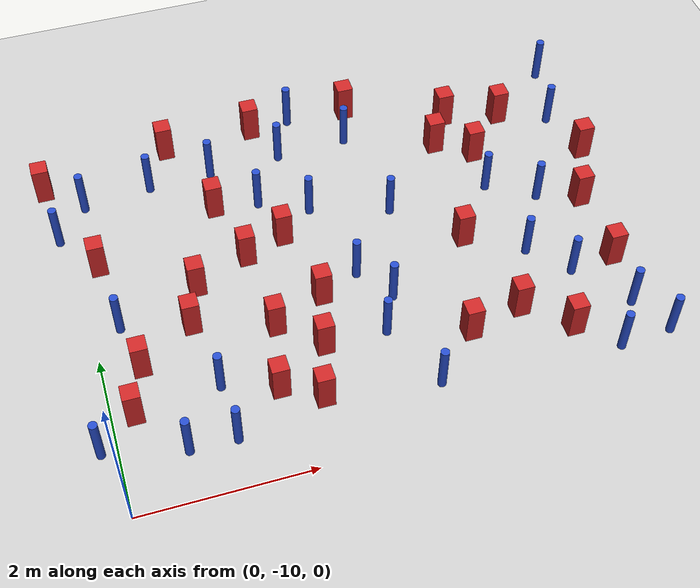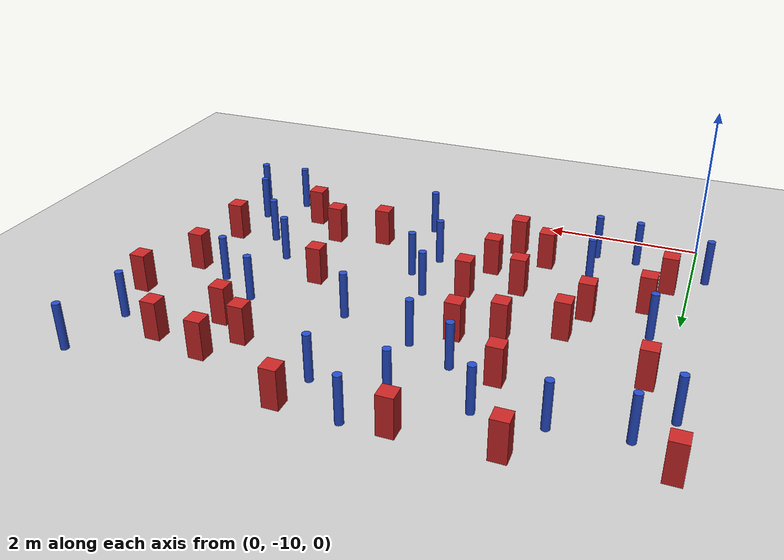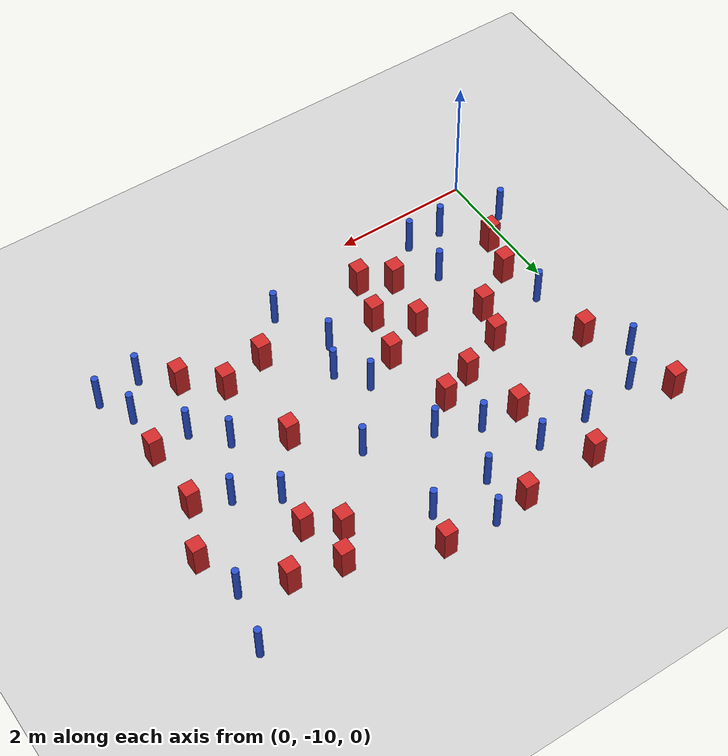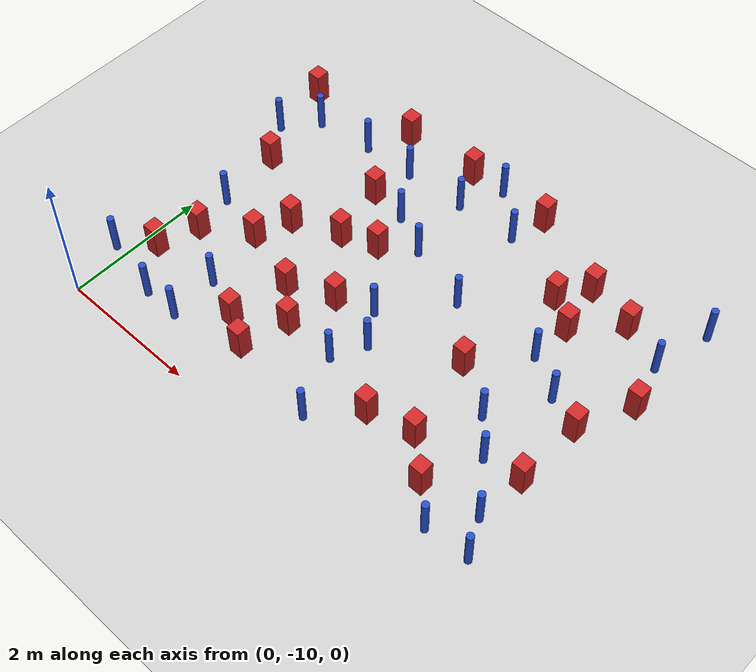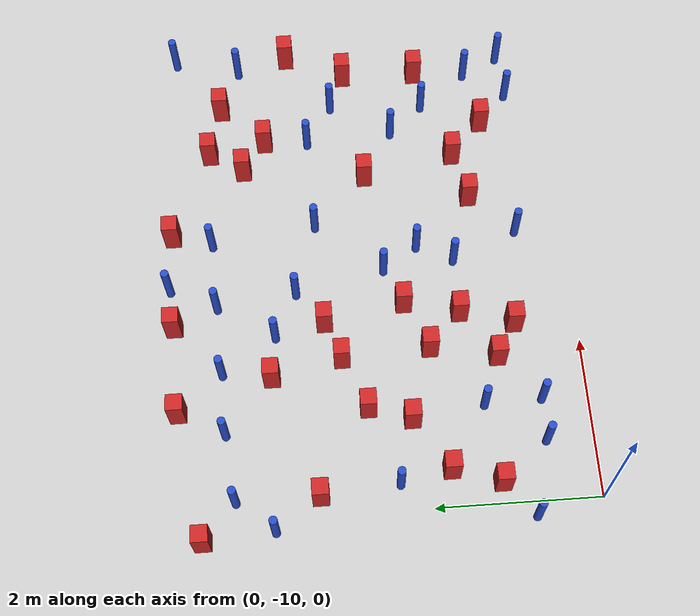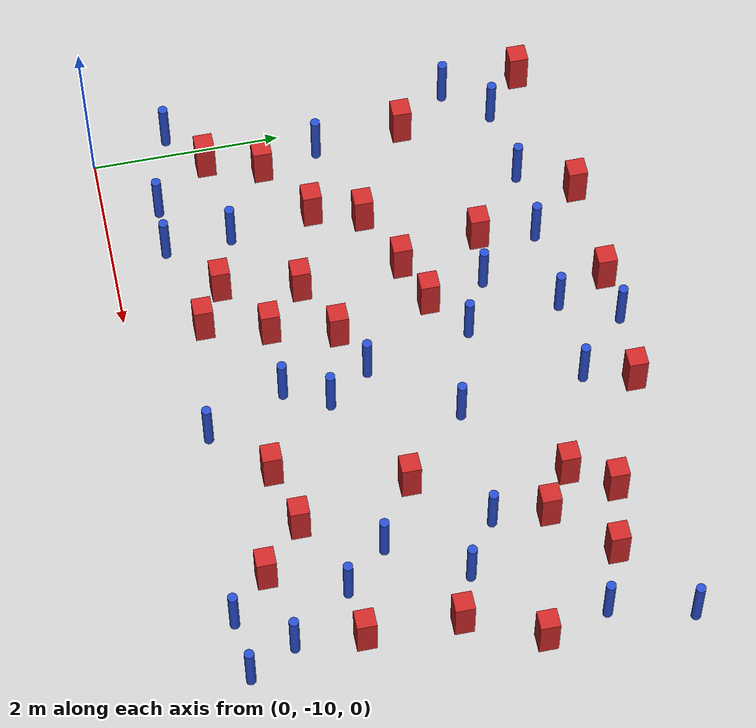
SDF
<sdf version="1.6">
 <world name="default">
  <model name="ground_plane">
   <static>1</static>
   <link name="link">
    <collision name="collision">
     <geometry><plane><normal>0 0 1</normal><size>100 100</size></plane></geometry>
     <surface><friction><ode><mu>100</mu><mu2>50</mu2></ode></friction></surface>
    </collision>
    <visual name="visual">
     <cast_shadows>0</cast_shadows>
     <geometry><plane><normal>0 0 1</normal><size>100 100</size></plane></geometry>
     <material>
      <ambient>1.0 1.0 1.0 1.0</ambient>
      <diffuse>0.8 0.8 0.8 1.0</diffuse>
      <specular>0.01 0.01 0.01 1.000000</specular>
     </material>
    </visual>
   </link>
  </model>
  <model name="square_post_obstacle4">
   <static>true</static>
   <pose>1.84041106598 -8.94122903766 8.22691968438e-08 7.2212513382e-06 -7.54495500217e-07 2.29674213826e-05</pose>
   <link name="link">
    <pose>0 0 0.25 0 -0 0</pose>
    <inertial>
     <mass>100</mass>
     <inertia>
      <ixx>0.166667</ixx>
      <ixy>0</ixy>
      <ixz>0</ixz>
      <iyy>0.166667</iyy>
      <iyz>0</iyz>
      <izz>0.166667</izz>
     </inertia>
    </inertial>
    <collision name="collision"><geometry><box><size>.2 .2 .5</size></box></geometry></collision>
    <visual name="visual">
     <geometry><box><size>.2 .2 .5</size></box></geometry>
     <material>
      <script><name>Gazebo/Red</name><uri>file://media/materials/scripts/gazebo.material</uri></script>
     </material>
    </visual>
   </link>
  </model>
  <model name="square_post_obstacle5">
   <static>true</static>
   <pose>4.70011311741 -5.88994895485 8.22691968438e-08 7.2212513382e-06 -7.54495500217e-07 2.29674213826e-05</pose>
   <link name="link">
    <pose>0 0 0.25 0 -0 0</pose>
    <inertial>
     <mass>100</mass>
     <inertia>
      <ixx>0.166667</ixx>
      <ixy>0</ixy>
      <ixz>0</ixz>
      <iyy>0.166667</iyy>
      <iyz>0</iyz>
      <izz>0.166667</izz>
     </inertia>
    </inertial>
    <collision name="collision"><geometry><box><size>.2 .2 .5</size></box></geometry></collision>
    <visual name="visual">
     <geometry><box><size>.2 .2 .5</size></box></geometry>
     <material>
      <script><name>Gazebo/Red</name><uri>file://media/materials/scripts/gazebo.material</uri></script>
     </material>
    </visual>
   </link>
  </model>
  <model name="pole_obstacle9">
   <static>true</static>
   <pose>2.28499519271 -6.22191880384 2.88873142074e-08 -9.90536689859e-09 4.60219948989e-07 -1.20965994961e-07</pose>
   <link name="link">
    <pose>0 0 0.3 0 -0 0</pose>
    <inertial>
     <mass>1</mass>
     <inertia><ixx>0.145833</ixx><ixy>0</ixy><ixz>0</ixz><iyy>0.145833</iyy><iyz>0</iyz><izz>0.125</izz></inertia>
    </inertial>
    <collision name="collision">
     <geometry><cylinder><radius>0.05</radius><length>.6</length></cylinder></geometry>
    </collision>
    <visual name="visual">
     <geometry><cylinder><radius>0.05</radius><length>.6</length></cylinder></geometry>
     <material>
      <script><name>Gazebo/Blue</name><uri>file://media/materials/scripts/gazebo.material</uri></script>
     </material>
    </visual>
   </link>
  </model>
  <model name="pole_obstacle10">
   <static>true</static>
   <pose>5.08234598472 -6.75202170743 2.88873142074e-08 -9.90536690842e-09 4.60219948965e-07 -1.20965994976e-07</pose>
   <link name="link">
    <pose>0 0 0.3 0 -0 0</pose>
    <inertial>
     <mass>1</mass>
     <inertia><ixx>0.145833</ixx><ixy>0</ixy><ixz>0</ixz><iyy>0.145833</iyy><iyz>0</iyz><izz>0.125</izz></inertia>
    </inertial>
    <collision name="collision">
     <geometry><cylinder><radius>0.05</radius><length>.6</length></cylinder></geometry>
    </collision>
    <visual name="visual">
     <geometry><cylinder><radius>0.05</radius><length>.6</length></cylinder></geometry>
     <material>
      <script><name>Gazebo/Blue</name><uri>file://media/materials/scripts/gazebo.material</uri></script>
     </material>
    </visual>
   </link>
  </model>
  <model name="pole_obstacle23">
   <static>true</static>
   <pose>3.81022921327 -6.79048008146 2.88873142074e-08 -9.90536689859e-09 4.60219948989e-07 -1.20965994961e-07</pose>
   <link name="link">
    <pose>0 0 0.3 0 -0 0</pose>
    <inertial>
     <mass>1</mass>
     <inertia><ixx>0.145833</ixx><ixy>0</ixy><ixz>0</ixz><iyy>0.145833</iyy><iyz>0</iyz><izz>0.125</izz></inertia>
    </inertial>
    <collision name="collision">
     <geometry><cylinder><radius>0.05</radius><length>.6</length></cylinder></geometry>
    </collision>
    <visual name="visual">
     <geometry><cylinder><radius>0.05</radius><length>.6</length></cylinder></geometry>
     <material>
      <script><name>Gazebo/Blue</name><uri>file://media/materials/scripts/gazebo.material</uri></script>
     </material>
    </visual>
   </link>
  </model>
  <model name="pole_obstacle35">
   <static>true</static>
   <pose>1.83019358297 -5.55293788739 2.88873142074e-08 -9.90536689852e-09 4.60219948989e-07 -1.2096599496e-07</pose>
   <link name="link">
    <pose>0 0 0.3 0 -0 0</pose>
    <inertial>
     <mass>1</mass>
     <inertia><ixx>0.145833</ixx><ixy>0</ixy><ixz>0</ixz><iyy>0.145833</iyy><iyz>0</iyz><izz>0.125</izz></inertia>
    </inertial>
    <collision name="collision">
     <geometry><cylinder><radius>0.05</radius><length>.6</length></cylinder></geometry>
    </collision>
    <visual name="visual">
     <geometry><cylinder><radius>0.05</radius><length>.6</length></cylinder></geometry>
     <material>
      <script><name>Gazebo/Blue</name><uri>file://media/materials/scripts/gazebo.material</uri></script>
     </material>
    </visual>
   </link>
  </model>
  <model name="square_post_obstacle30">
   <static>true</static>
   <pose>4.76592177865 -8.65943498125 8.22691968438e-08 7.2212513382e-06 -7.54495500217e-07 2.29674213826e-05</pose>
   <link name="link">
    <pose>0 0 0.25 0 -0 0</pose>
    <inertial>
     <mass>100</mass>
     <inertia>
      <ixx>0.166667</ixx>
      <ixy>0</ixy>
      <ixz>0</ixz>
      <iyy>0.166667</iyy>
      <iyz>0</iyz>
      <izz>0.166667</izz>
     </inertia>
    </inertial>
    <collision name="collision"><geometry><box><size>.2 .2 .5</size></box></geometry></collision>
    <visual name="visual">
     <geometry><box><size>.2 .2 .5</size></box></geometry>
     <material>
      <script><name>Gazebo/Red</name><uri>file://media/materials/scripts/gazebo.material</uri></script>
     </material>
    </visual>
   </link>
  </model>
  <model name="square_post_obstacle33">
   <static>true</static>
   <pose>2.63471819083 -7.84402448298 8.22691968438e-08 7.2212513382e-06 -7.54495500217e-07 2.29674213826e-05</pose>
   <link name="link">
    <pose>0 0 0.25 0 -0 0</pose>
    <inertial>
     <mass>100</mass>
     <inertia>
      <ixx>0.166667</ixx>
      <ixy>0</ixy>
      <ixz>0</ixz>
      <iyy>0.166667</iyy>
      <iyz>0</iyz>
      <izz>0.166667</izz>
     </inertia>
    </inertial>
    <collision name="collision"><geometry><box><size>.2 .2 .5</size></box></geometry></collision>
    <visual name="visual">
     <geometry><box><size>.2 .2 .5</size></box></geometry>
     <material>
      <script><name>Gazebo/Red</name><uri>file://media/materials/scripts/gazebo.material</uri></script>
     </material>
    </visual>
   </link>
  </model>
  <model name="pole_obstacle48">
   <static>true</static>
   <pose>2.72795726994 -5.50694056634 2.88873142074e-08 -9.90536689859e-09 4.60219948989e-07 -1.20965994961e-07</pose>
   <link name="link">
    <pose>0 0 0.3 0 -0 0</pose>
    <inertial>
     <mass>1</mass>
     <inertia><ixx>0.145833</ixx><ixy>0</ixy><ixz>0</ixz><iyy>0.145833</iyy><iyz>0</iyz><izz>0.125</izz></inertia>
    </inertial>
    <collision name="collision">
     <geometry><cylinder><radius>0.05</radius><length>.6</length></cylinder></geometry>
    </collision>
    <visual name="visual">
     <geometry><cylinder><radius>0.05</radius><length>.6</length></cylinder></geometry>
     <material>
      <script><name>Gazebo/Blue</name><uri>file://media/materials/scripts/gazebo.material</uri></script>
     </material>
    </visual>
   </link>
  </model>
  <model name="pole_obstacle52">
   <static>true</static>
   <pose>-0.159036289525 -6.13808711103 2.88873142074e-08 -9.90536689816e-09 4.6021994899e-07 -1.20965994961e-07</pose>
   <link name="link">
    <pose>0 0 0.3 0 -0 0</pose>
    <inertial>
     <mass>1</mass>
     <inertia><ixx>0.145833</ixx><ixy>0</ixy><ixz>0</ixz><iyy>0.145833</iyy><iyz>0</iyz><izz>0.125</izz></inertia>
    </inertial>
    <collision name="collision">
     <geometry><cylinder><radius>0.05</radius><length>.6</length></cylinder></geometry>
    </collision>
    <visual name="visual">
     <geometry><cylinder><radius>0.05</radius><length>.6</length></cylinder></geometry>
     <material>
      <script><name>Gazebo/Blue</name><uri>file://media/materials/scripts/gazebo.material</uri></script>
     </material>
    </visual>
   </link>
  </model>
  <model name="square_post_obstacle42">
   <static>true</static>
   <pose>2.46304388663 -8.53074294228 8.22691968438e-08 7.22125133819e-06 -7.54495500217e-07 2.29674213826e-05</pose>
   <link name="link">
    <pose>0 0 0.25 0 -0 0</pose>
    <inertial>
     <mass>100</mass>
     <inertia>
      <ixx>0.166667</ixx>
      <ixy>0</ixy>
      <ixz>0</ixz>
      <iyy>0.166667</iyy>
      <iyz>0</iyz>
      <izz>0.166667</izz>
     </inertia>
    </inertial>
    <collision name="collision"><geometry><box><size>.2 .2 .5</size></box></geometry></collision>
    <visual name="visual">
     <geometry><box><size>.2 .2 .5</size></box></geometry>
     <material>
      <script><name>Gazebo/Red</name><uri>file://media/materials/scripts/gazebo.material</uri></script>
     </material>
    </visual>
   </link>
  </model>
  <model name="pole_obstacle58">
   <static>true</static>
   <pose>6.05254121358 -8.94738554839 2.88873142074e-08 -9.9053668967e-09 4.60219948993e-07 -1.20965994957e-07</pose>
   <link name="link">
    <pose>0 0 0.3 0 -0 0</pose>
    <inertial>
     <mass>1</mass>
     <inertia><ixx>0.145833</ixx><ixy>0</ixy><ixz>0</ixz><iyy>0.145833</iyy><iyz>0</iyz><izz>0.125</izz></inertia>
    </inertial>
    <collision name="collision">
     <geometry><cylinder><radius>0.05</radius><length>.6</length></cylinder></geometry>
    </collision>
    <visual name="visual">
     <geometry><cylinder><radius>0.05</radius><length>.6</length></cylinder></geometry>
     <material>
      <script><name>Gazebo/Blue</name><uri>file://media/materials/scripts/gazebo.material</uri></script>
     </material>
    </visual>
   </link>
  </model>
  <model name="pole_obstacle64">
   <static>true</static>
   <pose>0.218682896509 -5.67972015425 2.88873142074e-08 -9.90536689491e-09 4.60219948997e-07 -1.20965994955e-07</pose>
   <link name="link">
    <pose>0 0 0.3 0 -0 0</pose>
    <inertial>
     <mass>1</mass>
     <inertia><ixx>0.145833</ixx><ixy>0</ixy><ixz>0</ixz><iyy>0.145833</iyy><iyz>0</iyz><izz>0.125</izz></inertia>
    </inertial>
    <collision name="collision">
     <geometry><cylinder><radius>0.05</radius><length>.6</length></cylinder></geometry>
    </collision>
    <visual name="visual">
     <geometry><cylinder><radius>0.05</radius><length>.6</length></cylinder></geometry>
     <material>
      <script><name>Gazebo/Blue</name><uri>file://media/materials/scripts/gazebo.material</uri></script>
     </material>
    </visual>
   </link>
  </model>
  <model name="pole_obstacle69">
   <static>true</static>
   <pose>6.29346309663 -5.85694596729 2.88873142074e-08 -9.90536690842e-09 4.60219948965e-07 -1.20965994976e-07</pose>
   <link name="link">
    <pose>0 0 0.3 0 -0 0</pose>
    <inertial>
     <mass>1</mass>
     <inertia><ixx>0.145833</ixx><ixy>0</ixy><ixz>0</ixz><iyy>0.145833</iyy><iyz>0</iyz><izz>0.125</izz></inertia>
    </inertial>
    <collision name="collision">
     <geometry><cylinder><radius>0.05</radius><length>.6</length></cylinder></geometry>
    </collision>
    <visual name="visual">
     <geometry><cylinder><radius>0.05</radius><length>.6</length></cylinder></geometry>
     <material>
      <script><name>Gazebo/Blue</name><uri>file://media/materials/scripts/gazebo.material</uri></script>
     </material>
    </visual>
   </link>
  </model>
  <model name="pole_obstacle70">
   <static>true</static>
   <pose>6.30194003677 -9.43050835284 2.88873142074e-08 -9.9053668967e-09 4.60219948993e-07 -1.20965994957e-07</pose>
   <link name="link">
    <pose>0 0 0.3 0 -0 0</pose>
    <inertial>
     <mass>1</mass>
     <inertia><ixx>0.145833</ixx><ixy>0</ixy><ixz>0</ixz><iyy>0.145833</iyy><iyz>0</iyz><izz>0.125</izz></inertia>
    </inertial>
    <collision name="collision">
     <geometry><cylinder><radius>0.05</radius><length>.6</length></cylinder></geometry>
    </collision>
    <visual name="visual">
     <geometry><cylinder><radius>0.05</radius><length>.6</length></cylinder></geometry>
     <material>
      <script><name>Gazebo/Blue</name><uri>file://media/materials/scripts/gazebo.material</uri></script>
     </material>
    </visual>
   </link>
  </model>
  <model name="square_post_obstacle64">
   <static>true</static>
   <pose>1.27280979858 -7.30804106862 8.22691968438e-08 7.2212513382e-06 -7.54495500217e-07 2.29674213826e-05</pose>
   <link name="link">
    <pose>0 0 0.25 0 -0 0</pose>
    <inertial>
     <mass>100</mass>
     <inertia>
      <ixx>0.166667</ixx>
      <ixy>0</ixy>
      <ixz>0</ixz>
      <iyy>0.166667</iyy>
      <iyz>0</iyz>
      <izz>0.166667</izz>
     </inertia>
    </inertial>
    <collision name="collision"><geometry><box><size>.2 .2 .5</size></box></geometry></collision>
    <visual name="visual">
     <geometry><box><size>.2 .2 .5</size></box></geometry>
     <material>
      <script><name>Gazebo/Red</name><uri>file://media/materials/scripts/gazebo.material</uri></script>
     </material>
    </visual>
   </link>
  </model>
  <model name="pole_obstacle79">
   <static>true</static>
   <pose>1.22673794174 -8.71818432931 2.88873142074e-08 -9.90536690474e-09 4.60219948974e-07 -1.2096599497e-07</pose>
   <link name="link">
    <pose>0 0 0.3 0 -0 0</pose>
    <inertial>
     <mass>1</mass>
     <inertia><ixx>0.145833</ixx><ixy>0</ixy><ixz>0</ixz><iyy>0.145833</iyy><iyz>0</iyz><izz>0.125</izz></inertia>
    </inertial>
    <collision name="collision">
     <geometry><cylinder><radius>0.05</radius><length>.6</length></cylinder></geometry>
    </collision>
    <visual name="visual">
     <geometry><cylinder><radius>0.05</radius><length>.6</length></cylinder></geometry>
     <material>
      <script><name>Gazebo/Blue</name><uri>file://media/materials/scripts/gazebo.material</uri></script>
     </material>
    </visual>
   </link>
  </model>
  <model name="square_post_obstacle77">
   <static>true</static>
   <pose>-0.220350787871 -5.29303689626 8.22691968438e-08 7.22125133819e-06 -7.54495500217e-07 2.29674213826e-05</pose>
   <link name="link">
    <pose>0 0 0.25 0 -0 0</pose>
    <inertial>
     <mass>100</mass>
     <inertia>
      <ixx>0.166667</ixx>
      <ixy>0</ixy>
      <ixz>0</ixz>
      <iyy>0.166667</iyy>
      <iyz>0</iyz>
      <izz>0.166667</izz>
     </inertia>
    </inertial>
    <collision name="collision"><geometry><box><size>.2 .2 .5</size></box></geometry></collision>
    <visual name="visual">
     <geometry><box><size>.2 .2 .5</size></box></geometry>
     <material>
      <script><name>Gazebo/Red</name><uri>file://media/materials/scripts/gazebo.material</uri></script>
     </material>
    </visual>
   </link>
  </model>
  <model name="square_post_obstacle83">
   <static>true</static>
   <pose>2.01007070176 -8.11932654621 8.22691968438e-08 7.22125133819e-06 -7.54495500217e-07 2.29674213826e-05</pose>
   <link name="link">
    <pose>0 0 0.25 0 -0 0</pose>
    <inertial>
     <mass>100</mass>
     <inertia>
      <ixx>0.166667</ixx>
      <ixy>0</ixy>
      <ixz>0</ixz>
      <iyy>0.166667</iyy>
      <iyz>0</iyz>
      <izz>0.166667</izz>
     </inertia>
    </inertial>
    <collision name="collision"><geometry><box><size>.2 .2 .5</size></box></geometry></collision>
    <visual name="visual">
     <geometry><box><size>.2 .2 .5</size></box></geometry>
     <material>
      <script><name>Gazebo/Red</name><uri>file://media/materials/scripts/gazebo.material</uri></script>
     </material>
    </visual>
   </link>
  </model>
  <model name="square_post_obstacle84">
   <static>true</static>
   <pose>2.49554782191 -4.96716931104 8.22691968438e-08 7.22125133819e-06 -7.54495500217e-07 2.29674213826e-05</pose>
   <link name="link">
    <pose>0 0 0.25 0 -0 0</pose>
    <inertial>
     <mass>100</mass>
     <inertia>
      <ixx>0.166667</ixx>
      <ixy>0</ixy>
      <ixz>0</ixz>
      <iyy>0.166667</iyy>
      <iyz>0</iyz>
      <izz>0.166667</izz>
     </inertia>
    </inertial>
    <collision name="collision"><geometry><box><size>.2 .2 .5</size></box></geometry></collision>
    <visual name="visual">
     <geometry><box><size>.2 .2 .5</size></box></geometry>
     <material>
      <script><name>Gazebo/Red</name><uri>file://media/materials/scripts/gazebo.material</uri></script>
     </material>
    </visual>
   </link>
  </model>
  <model name="pole_obstacle99">
   <static>true</static>
   <pose>3.56519978934 -9.36902619376 2.88873142074e-08 -9.90536692318e-09 4.6021994893e-07 -1.20965994988e-07</pose>
   <link name="link">
    <pose>0 0 0.3 0 -0 0</pose>
    <inertial>
     <mass>1</mass>
     <inertia><ixx>0.145833</ixx><ixy>0</ixy><ixz>0</ixz><iyy>0.145833</iyy><iyz>0</iyz><izz>0.125</izz></inertia>
    </inertial>
    <collision name="collision">
     <geometry><cylinder><radius>0.05</radius><length>.6</length></cylinder></geometry>
    </collision>
    <visual name="visual">
     <geometry><cylinder><radius>0.05</radius><length>.6</length></cylinder></geometry>
     <material>
      <script><name>Gazebo/Blue</name><uri>file://media/materials/scripts/gazebo.material</uri></script>
     </material>
    </visual>
   </link>
  </model>
  <model name="square_post_obstacle100">
   <static>true</static>
   <pose>6.47187357395 -6.51758600525 8.22691968438e-08 7.22125133819e-06 -7.54495500217e-07 2.29674213826e-05</pose>
   <link name="link">
    <pose>0 0 0.25 0 -0 0</pose>
    <inertial>
     <mass>100</mass>
     <inertia>
      <ixx>0.166667</ixx>
      <ixy>0</ixy>
      <ixz>0</ixz>
      <iyy>0.166667</iyy>
      <iyz>0</iyz>
      <izz>0.166667</izz>
     </inertia>
    </inertial>
    <collision name="collision"><geometry><box><size>.2 .2 .5</size></box></geometry></collision>
    <visual name="visual">
     <geometry><box><size>.2 .2 .5</size></box></geometry>
     <material>
      <script><name>Gazebo/Red</name><uri>file://media/materials/scripts/gazebo.material</uri></script>
     </material>
    </visual>
   </link>
  </model>
  <model name="square_post_obstacle103">
   <static>true</static>
   <pose>0.252870038256 -8.82488550057 8.22691968438e-08 7.22125133819e-06 -7.54495500217e-07 2.29674213826e-05</pose>
   <link name="link">
    <pose>0 0 0.25 0 -0 0</pose>
    <inertial>
     <mass>100</mass>
     <inertia>
      <ixx>0.166667</ixx>
      <ixy>0</ixy>
      <ixz>0</ixz>
      <iyy>0.166667</iyy>
      <iyz>0</iyz>
      <izz>0.166667</izz>
     </inertia>
    </inertial>
    <collision name="collision"><geometry><box><size>.2 .2 .5</size></box></geometry></collision>
    <visual name="visual">
     <geometry><box><size>.2 .2 .5</size></box></geometry>
     <material>
      <script><name>Gazebo/Red</name><uri>file://media/materials/scripts/gazebo.material</uri></script>
     </material>
    </visual>
   </link>
  </model>
  <model name="pole_obstacle113">
   <static>true</static>
   <pose>-0.179792335642 -9.18770063555 2.88873142074e-08 -9.90536690875e-09 4.60219948965e-07 -1.20965994978e-07</pose>
   <link name="link">
    <pose>0 0 0.3 0 -0 0</pose>
    <inertial>
     <mass>1</mass>
     <inertia><ixx>0.145833</ixx><ixy>0</ixy><ixz>0</ixz><iyy>0.145833</iyy><iyz>0</iyz><izz>0.125</izz></inertia>
    </inertial>
    <collision name="collision">
     <geometry><cylinder><radius>0.05</radius><length>.6</length></cylinder></geometry>
    </collision>
    <visual name="visual">
     <geometry><cylinder><radius>0.05</radius><length>.6</length></cylinder></geometry>
     <material>
      <script><name>Gazebo/Blue</name><uri>file://media/materials/scripts/gazebo.material</uri></script>
     </material>
    </visual>
   </link>
  </model>
  <model name="square_post_obstacle114">
   <static>true</static>
   <pose>6.1076257782 -8.25750673547 8.22691968438e-08 7.2212513382e-06 -7.54495500217e-07 2.29674213826e-05</pose>
   <link name="link">
    <pose>0 0 0.25 0 -0 0</pose>
    <inertial>
     <mass>100</mass>
     <inertia>
      <ixx>0.166667</ixx>
      <ixy>0</ixy>
      <ixz>0</ixz>
      <iyy>0.166667</iyy>
      <iyz>0</iyz>
      <izz>0.166667</izz>
     </inertia>
    </inertial>
    <collision name="collision"><geometry><box><size>.2 .2 .5</size></box></geometry></collision>
    <visual name="visual">
     <geometry><box><size>.2 .2 .5</size></box></geometry>
     <material>
      <script><name>Gazebo/Red</name><uri>file://media/materials/scripts/gazebo.material</uri></script>
     </material>
    </visual>
   </link>
  </model>
  <model name="pole_obstacle120">
   <static>true</static>
   <pose>3.20280637633 -8.53207375318 2.88873142074e-08 -9.90536692318e-09 4.6021994893e-07 -1.20965994988e-07</pose>
   <link name="link">
    <pose>0 0 0.3 0 -0 0</pose>
    <inertial>
     <mass>1</mass>
     <inertia><ixx>0.145833</ixx><ixy>0</ixy><ixz>0</ixz><iyy>0.145833</iyy><iyz>0</iyz><izz>0.125</izz></inertia>
    </inertial>
    <collision name="collision">
     <geometry><cylinder><radius>0.05</radius><length>.6</length></cylinder></geometry>
    </collision>
    <visual name="visual">
     <geometry><cylinder><radius>0.05</radius><length>.6</length></cylinder></geometry>
     <material>
      <script><name>Gazebo/Blue</name><uri>file://media/materials/scripts/gazebo.material</uri></script>
     </material>
    </visual>
   </link>
  </model>
  <model name="pole_obstacle126">
   <static>true</static>
   <pose>5.17277144164 -7.87434018745 2.88873142074e-08 -9.90536690842e-09 4.60219948965e-07 -1.20965994976e-07</pose>
   <link name="link">
    <pose>0 0 0.3 0 -0 0</pose>
    <inertial>
     <mass>1</mass>
     <inertia><ixx>0.145833</ixx><ixy>0</ixy><ixz>0</ixz><iyy>0.145833</iyy><iyz>0</iyz><izz>0.125</izz></inertia>
    </inertial>
    <collision name="collision">
     <geometry><cylinder><radius>0.05</radius><length>.6</length></cylinder></geometry>
    </collision>
    <visual name="visual">
     <geometry><cylinder><radius>0.05</radius><length>.6</length></cylinder></geometry>
     <material>
      <script><name>Gazebo/Blue</name><uri>file://media/materials/scripts/gazebo.material</uri></script>
     </material>
    </visual>
   </link>
  </model>
  <model name="pole_obstacle137">
   <static>true</static>
   <pose>1.0524686714 -5.57836600572 2.88873142074e-08 -9.90536689852e-09 4.60219948989e-07 -1.2096599496e-07</pose>
   <link name="link">
    <pose>0 0 0.3 0 -0 0</pose>
    <inertial>
     <mass>1</mass>
     <inertia><ixx>0.145833</ixx><ixy>0</ixy><ixz>0</ixz><iyy>0.145833</iyy><iyz>0</iyz><izz>0.125</izz></inertia>
    </inertial>
    <collision name="collision">
     <geometry><cylinder><radius>0.05</radius><length>.6</length></cylinder></geometry>
    </collision>
    <visual name="visual">
     <geometry><cylinder><radius>0.05</radius><length>.6</length></cylinder></geometry>
     <material>
      <script><name>Gazebo/Blue</name><uri>file://media/materials/scripts/gazebo.material</uri></script>
     </material>
    </visual>
   </link>
  </model>
  <model name="square_post_obstacle134">
   <static>true</static>
   <pose>2.27312937882 -9.19396429457 8.22691968438e-08 7.22125133819e-06 -7.54495500217e-07 2.29674213826e-05</pose>
   <link name="link">
    <pose>0 0 0.25 0 -0 0</pose>
    <inertial>
     <mass>100</mass>
     <inertia>
      <ixx>0.166667</ixx>
      <ixy>0</ixy>
      <ixz>0</ixz>
      <iyy>0.166667</iyy>
      <iyz>0</iyz>
      <izz>0.166667</izz>
     </inertia>
    </inertial>
    <collision name="collision"><geometry><box><size>.2 .2 .5</size></box></geometry></collision>
    <visual name="visual">
     <geometry><box><size>.2 .2 .5</size></box></geometry>
     <material>
      <script><name>Gazebo/Red</name><uri>file://media/materials/scripts/gazebo.material</uri></script>
     </material>
    </visual>
   </link>
  </model>
  <model name="square_post_obstacle135">
   <static>true</static>
   <pose>0.441538835366 -8.23963980147 8.22691968438e-08 7.22125133819e-06 -7.54495500217e-07 2.29674213826e-05</pose>
   <link name="link">
    <pose>0 0 0.25 0 -0 0</pose>
    <inertial>
     <mass>100</mass>
     <inertia>
      <ixx>0.166667</ixx>
      <ixy>0</ixy>
      <ixz>0</ixz>
      <iyy>0.166667</iyy>
      <iyz>0</iyz>
      <izz>0.166667</izz>
     </inertia>
    </inertial>
    <collision name="collision"><geometry><box><size>.2 .2 .5</size></box></geometry></collision>
    <visual name="visual">
     <geometry><box><size>.2 .2 .5</size></box></geometry>
     <material>
      <script><name>Gazebo/Red</name><uri>file://media/materials/scripts/gazebo.material</uri></script>
     </material>
    </visual>
   </link>
  </model>
  <model name="square_post_obstacle143">
   <static>true</static>
   <pose>5.25356596154 -9.08665563074 8.22691968438e-08 7.2212513382e-06 -7.54495500217e-07 2.29674213826e-05</pose>
   <link name="link">
    <pose>0 0 0.25 0 -0 0</pose>
    <inertial>
     <mass>100</mass>
     <inertia>
      <ixx>0.166667</ixx>
      <ixy>0</ixy>
      <ixz>0</ixz>
      <iyy>0.166667</iyy>
      <iyz>0</iyz>
      <izz>0.166667</izz>
     </inertia>
    </inertial>
    <collision name="collision"><geometry><box><size>.2 .2 .5</size></box></geometry></collision>
    <visual name="visual">
     <geometry><box><size>.2 .2 .5</size></box></geometry>
     <material>
      <script><name>Gazebo/Red</name><uri>file://media/materials/scripts/gazebo.material</uri></script>
     </material>
    </visual>
   </link>
  </model>
  <model name="square_post_obstacle144">
   <static>true</static>
   <pose>0.225654592045 -6.68012672359 8.22691968438e-08 7.2212513382e-06 -7.54495500217e-07 2.29674213826e-05</pose>
   <link name="link">
    <pose>0 0 0.25 0 -0 0</pose>
    <inertial>
     <mass>100</mass>
     <inertia>
      <ixx>0.166667</ixx>
      <ixy>0</ixy>
      <ixz>0</ixz>
      <iyy>0.166667</iyy>
      <iyz>0</iyz>
      <izz>0.166667</izz>
     </inertia>
    </inertial>
    <collision name="collision"><geometry><box><size>.2 .2 .5</size></box></geometry></collision>
    <visual name="visual">
     <geometry><box><size>.2 .2 .5</size></box></geometry>
     <material>
      <script><name>Gazebo/Red</name><uri>file://media/materials/scripts/gazebo.material</uri></script>
     </material>
    </visual>
   </link>
  </model>
  <model name="pole_obstacle158">
   <static>true</static>
   <pose>0.307828723711 -7.62541927075 2.88873142074e-08 -9.90536689683e-09 4.60219948993e-07 -1.20965994957e-07</pose>
   <link name="link">
    <pose>0 0 0.3 0 -0 0</pose>
    <inertial>
     <mass>1</mass>
     <inertia><ixx>0.145833</ixx><ixy>0</ixy><ixz>0</ixz><iyy>0.145833</iyy><iyz>0</iyz><izz>0.125</izz></inertia>
    </inertial>
    <collision name="collision">
     <geometry><cylinder><radius>0.05</radius><length>.6</length></cylinder></geometry>
    </collision>
    <visual name="visual">
     <geometry><cylinder><radius>0.05</radius><length>.6</length></cylinder></geometry>
     <material>
      <script><name>Gazebo/Blue</name><uri>file://media/materials/scripts/gazebo.material</uri></script>
     </material>
    </visual>
   </link>
  </model>
  <model name="square_post_obstacle153">
   <static>true</static>
   <pose>4.97921795942 -5.45337031479 8.22691968438e-08 7.2212513382e-06 -7.54495500217e-07 2.29674213826e-05</pose>
   <link name="link">
    <pose>0 0 0.25 0 -0 0</pose>
    <inertial>
     <mass>100</mass>
     <inertia>
      <ixx>0.166667</ixx>
      <ixy>0</ixy>
      <ixz>0</ixz>
      <iyy>0.166667</iyy>
      <iyz>0</iyz>
      <izz>0.166667</izz>
     </inertia>
    </inertial>
    <collision name="collision"><geometry><box><size>.2 .2 .5</size></box></geometry></collision>
    <visual name="visual">
     <geometry><box><size>.2 .2 .5</size></box></geometry>
     <material>
      <script><name>Gazebo/Red</name><uri>file://media/materials/scripts/gazebo.material</uri></script>
     </material>
    </visual>
   </link>
  </model>
  <model name="square_post_obstacle154">
   <static>true</static>
   <pose>3.76799930524 -4.95729832944 8.22691968438e-08 7.22125133819e-06 -7.54495500217e-07 2.29674213826e-05</pose>
   <link name="link">
    <pose>0 0 0.25 0 -0 0</pose>
    <inertial>
     <mass>100</mass>
     <inertia>
      <ixx>0.166667</ixx>
      <ixy>0</ixy>
      <ixz>0</ixz>
      <iyy>0.166667</iyy>
      <iyz>0</iyz>
      <izz>0.166667</izz>
     </inertia>
    </inertial>
    <collision name="collision"><geometry><box><size>.2 .2 .5</size></box></geometry></collision>
    <visual name="visual">
     <geometry><box><size>.2 .2 .5</size></box></geometry>
     <material>
      <script><name>Gazebo/Red</name><uri>file://media/materials/scripts/gazebo.material</uri></script>
     </material>
    </visual>
   </link>
  </model>
  <model name="pole_obstacle165">
   <static>true</static>
   <pose>3.00814005378 -4.91621063714 2.88873142074e-08 -9.90536689859e-09 4.60219948989e-07 -1.20965994961e-07</pose>
   <link name="link">
    <pose>0 0 0.3 0 -0 0</pose>
    <inertial>
     <mass>1</mass>
     <inertia><ixx>0.145833</ixx><ixy>0</ixy><ixz>0</ixz><iyy>0.145833</iyy><iyz>0</iyz><izz>0.125</izz></inertia>
    </inertial>
    <collision name="collision">
     <geometry><cylinder><radius>0.05</radius><length>.6</length></cylinder></geometry>
    </collision>
    <visual name="visual">
     <geometry><cylinder><radius>0.05</radius><length>.6</length></cylinder></geometry>
     <material>
      <script><name>Gazebo/Blue</name><uri>file://media/materials/scripts/gazebo.material</uri></script>
     </material>
    </visual>
   </link>
  </model>
  <model name="square_post_obstacle161">
   <static>true</static>
   <pose>1.09969408842 -7.82776210381 8.22691968438e-08 7.2212513382e-06 -7.54495500217e-07 2.29674213826e-05</pose>
   <link name="link">
    <pose>0 0 0.25 0 -0 0</pose>
    <inertial>
     <mass>100</mass>
     <inertia>
      <ixx>0.166667</ixx>
      <ixy>0</ixy>
      <ixz>0</ixz>
      <iyy>0.166667</iyy>
      <iyz>0</iyz>
      <izz>0.166667</izz>
     </inertia>
    </inertial>
    <collision name="collision"><geometry><box><size>.2 .2 .5</size></box></geometry></collision>
    <visual name="visual">
     <geometry><box><size>.2 .2 .5</size></box></geometry>
     <material>
      <script><name>Gazebo/Red</name><uri>file://media/materials/scripts/gazebo.material</uri></script>
     </material>
    </visual>
   </link>
  </model>
  <model name="square_post_obstacle166">
   <static>true</static>
   <pose>1.93823226156 -7.02832082435 8.22691968438e-08 7.2212513382e-06 -7.54495500217e-07 2.29674213826e-05</pose>
   <link name="link">
    <pose>0 0 0.25 0 -0 0</pose>
    <inertial>
     <mass>100</mass>
     <inertia>
      <ixx>0.166667</ixx>
      <ixy>0</ixy>
      <ixz>0</ixz>
      <iyy>0.166667</iyy>
      <iyz>0</iyz>
      <izz>0.166667</izz>
     </inertia>
    </inertial>
    <collision name="collision"><geometry><box><size>.2 .2 .5</size></box></geometry></collision>
    <visual name="visual">
     <geometry><box><size>.2 .2 .5</size></box></geometry>
     <material>
      <script><name>Gazebo/Red</name><uri>file://media/materials/scripts/gazebo.material</uri></script>
     </material>
    </visual>
   </link>
  </model>
  <model name="pole_obstacle174">
   <static>true</static>
   <pose>0.725640200379 -9.41104645102 2.88873142074e-08 -9.90536690779e-09 4.60219948967e-07 -1.20965994975e-07</pose>
   <link name="link">
    <pose>0 0 0.3 0 -0 0</pose>
    <inertial>
     <mass>1</mass>
     <inertia><ixx>0.145833</ixx><ixy>0</ixy><ixz>0</ixz><iyy>0.145833</iyy><iyz>0</iyz><izz>0.125</izz></inertia>
    </inertial>
    <collision name="collision">
     <geometry><cylinder><radius>0.05</radius><length>.6</length></cylinder></geometry>
    </collision>
    <visual name="visual">
     <geometry><cylinder><radius>0.05</radius><length>.6</length></cylinder></geometry>
     <material>
      <script><name>Gazebo/Blue</name><uri>file://media/materials/scripts/gazebo.material</uri></script>
     </material>
    </visual>
   </link>
  </model>
  <model name="pole_obstacle179">
   <static>true</static>
   <pose>2.86258214607 -6.50294044637 2.88873142074e-08 -9.90536689859e-09 4.60219948989e-07 -1.20965994961e-07</pose>
   <link name="link">
    <pose>0 0 0.3 0 -0 0</pose>
    <inertial>
     <mass>1</mass>
     <inertia><ixx>0.145833</ixx><ixy>0</ixy><ixz>0</ixz><iyy>0.145833</iyy><iyz>0</iyz><izz>0.125</izz></inertia>
    </inertial>
    <collision name="collision">
     <geometry><cylinder><radius>0.05</radius><length>.6</length></cylinder></geometry>
    </collision>
    <visual name="visual">
     <geometry><cylinder><radius>0.05</radius><length>.6</length></cylinder></geometry>
     <material>
      <script><name>Gazebo/Blue</name><uri>file://media/materials/scripts/gazebo.material</uri></script>
     </material>
    </visual>
   </link>
  </model>
  <model name="square_post_obstacle179">
   <static>true</static>
   <pose>6.12395970927 -7.28467910822 8.22691968438e-08 7.2212513382e-06 -7.54495500217e-07 2.29674213826e-05</pose>
   <link name="link">
    <pose>0 0 0.25 0 -0 0</pose>
    <inertial>
     <mass>100</mass>
     <inertia>
      <ixx>0.166667</ixx>
      <ixy>0</ixy>
      <ixz>0</ixz>
      <iyy>0.166667</iyy>
      <iyz>0</iyz>
      <izz>0.166667</izz>
     </inertia>
    </inertial>
    <collision name="collision"><geometry><box><size>.2 .2 .5</size></box></geometry></collision>
    <visual name="visual">
     <geometry><box><size>.2 .2 .5</size></box></geometry>
     <material>
      <script><name>Gazebo/Red</name><uri>file://media/materials/scripts/gazebo.material</uri></script>
     </material>
    </visual>
   </link>
  </model>
  <model name="square_post_obstacle181">
   <static>true</static>
   <pose>4.11479116235 -8.81512648507 8.22691968438e-08 7.22125133819e-06 -7.54495500217e-07 2.29674213826e-05</pose>
   <link name="link">
    <pose>0 0 0.25 0 -0 0</pose>
    <inertial>
     <mass>100</mass>
     <inertia>
      <ixx>0.166667</ixx>
      <ixy>0</ixy>
      <ixz>0</ixz>
      <iyy>0.166667</iyy>
      <iyz>0</iyz>
      <izz>0.166667</izz>
     </inertia>
    </inertial>
    <collision name="collision"><geometry><box><size>.2 .2 .5</size></box></geometry></collision>
    <visual name="visual">
     <geometry><box><size>.2 .2 .5</size></box></geometry>
     <material>
      <script><name>Gazebo/Red</name><uri>file://media/materials/scripts/gazebo.material</uri></script>
     </material>
    </visual>
   </link>
  </model>
  <model name="square_post_obstacle184">
   <static>true</static>
   <pose>5.67280334252 -5.6158382232 8.22691968438e-08 7.22125133819e-06 -7.54495500217e-07 2.29674213826e-05</pose>
   <link name="link">
    <pose>0 0 0.25 0 -0 0</pose>
    <inertial>
     <mass>100</mass>
     <inertia>
      <ixx>0.166667</ixx>
      <ixy>0</ixy>
      <ixz>0</ixz>
      <iyy>0.166667</iyy>
      <iyz>0</iyz>
      <izz>0.166667</izz>
     </inertia>
    </inertial>
    <collision name="collision"><geometry><box><size>.2 .2 .5</size></box></geometry></collision>
    <visual name="visual">
     <geometry><box><size>.2 .2 .5</size></box></geometry>
     <material>
      <script><name>Gazebo/Red</name><uri>file://media/materials/scripts/gazebo.material</uri></script>
     </material>
    </visual>
   </link>
  </model>
  <model name="square_post_obstacle193">
   <static>true</static>
   <pose>4.51080441102 -7.47771759173 8.22691968438e-08 7.2212513382e-06 -7.54495500217e-07 2.29674213826e-05</pose>
   <link name="link">
    <pose>0 0 0.25 0 -0 0</pose>
    <inertial>
     <mass>100</mass>
     <inertia>
      <ixx>0.166667</ixx>
      <ixy>0</ixy>
      <ixz>0</ixz>
      <iyy>0.166667</iyy>
      <iyz>0</iyz>
      <izz>0.166667</izz>
     </inertia>
    </inertial>
    <collision name="collision"><geometry><box><size>.2 .2 .5</size></box></geometry></collision>
    <visual name="visual">
     <geometry><box><size>.2 .2 .5</size></box></geometry>
     <material>
      <script><name>Gazebo/Red</name><uri>file://media/materials/scripts/gazebo.material</uri></script>
     </material>
    </visual>
   </link>
  </model>
  <model name="square_post_obstacle194">
   <static>true</static>
   <pose>1.7439390046 -6.1606142894 8.22691968438e-08 7.2212513382e-06 -7.54495500217e-07 2.29674213826e-05</pose>
   <link name="link">
    <pose>0 0 0.25 0 -0 0</pose>
    <inertial>
     <mass>100</mass>
     <inertia>
      <ixx>0.166667</ixx>
      <ixy>0</ixy>
      <ixz>0</ixz>
      <iyy>0.166667</iyy>
      <iyz>0</iyz>
      <izz>0.166667</izz>
     </inertia>
    </inertial>
    <collision name="collision"><geometry><box><size>.2 .2 .5</size></box></geometry></collision>
    <visual name="visual">
     <geometry><box><size>.2 .2 .5</size></box></geometry>
     <material>
      <script><name>Gazebo/Red</name><uri>file://media/materials/scripts/gazebo.material</uri></script>
     </material>
    </visual>
   </link>
  </model>
  <model name="square_post_obstacle200">
   <static>true</static>
   <pose>5.12390826449 -6.18261495994 8.22691968438e-08 7.2212513382e-06 -7.54495500217e-07 2.29674213826e-05</pose>
   <link name="link">
    <pose>0 0 0.25 0 -0 0</pose>
    <inertial>
     <mass>100</mass>
     <inertia>
      <ixx>0.166667</ixx>
      <ixy>0</ixy>
      <ixz>0</ixz>
      <iyy>0.166667</iyy>
      <iyz>0</iyz>
      <izz>0.166667</izz>
     </inertia>
    </inertial>
    <collision name="collision"><geometry><box><size>.2 .2 .5</size></box></geometry></collision>
    <visual name="visual">
     <geometry><box><size>.2 .2 .5</size></box></geometry>
     <material>
      <script><name>Gazebo/Red</name><uri>file://media/materials/scripts/gazebo.material</uri></script>
     </material>
    </visual>
   </link>
  </model>
  <model name="square_post_obstacle205">
   <static>true</static>
   <pose>2.43536233149 -6.84146290889 8.22691968438e-08 7.22125133819e-06 -7.54495500217e-07 2.29674213826e-05</pose>
   <link name="link">
    <pose>0 0 0.25 0 -0 0</pose>
    <inertial>
     <mass>100</mass>
     <inertia>
      <ixx>0.166667</ixx>
      <ixy>0</ixy>
      <ixz>0</ixz>
      <iyy>0.166667</iyy>
      <iyz>0</iyz>
      <izz>0.166667</izz>
     </inertia>
    </inertial>
    <collision name="collision"><geometry><box><size>.2 .2 .5</size></box></geometry></collision>
    <visual name="visual">
     <geometry><box><size>.2 .2 .5</size></box></geometry>
     <material>
      <script><name>Gazebo/Red</name><uri>file://media/materials/scripts/gazebo.material</uri></script>
     </material>
    </visual>
   </link>
  </model>
  <model name="pole_obstacle197">
   <static>true</static>
   <pose>3.42732876687 -8.07382057522 2.88873142074e-08 -9.90536692318e-09 4.6021994893e-07 -1.20965994988e-07</pose>
   <link name="link">
    <pose>0 0 0.3 0 -0 0</pose>
    <inertial>
     <mass>1</mass>
     <inertia><ixx>0.145833</ixx><ixy>0</ixy><ixz>0</ixz><iyy>0.145833</iyy><iyz>0</iyz><izz>0.125</izz></inertia>
    </inertial>
    <collision name="collision">
     <geometry><cylinder><radius>0.05</radius><length>.6</length></cylinder></geometry>
    </collision>
    <visual name="visual">
     <geometry><cylinder><radius>0.05</radius><length>.6</length></cylinder></geometry>
     <material>
      <script><name>Gazebo/Blue</name><uri>file://media/materials/scripts/gazebo.material</uri></script>
     </material>
    </visual>
   </link>
  </model>
  <model name="pole_obstacle203">
   <static>true</static>
   <pose>5.67685387637 -9.48007901076 2.88873142074e-08 -9.9053668967e-09 4.60219948993e-07 -1.20965994957e-07</pose>
   <link name="link">
    <pose>0 0 0.3 0 -0 0</pose>
    <inertial>
     <mass>1</mass>
     <inertia><ixx>0.145833</ixx><ixy>0</ixy><ixz>0</ixz><iyy>0.145833</iyy><iyz>0</iyz><izz>0.125</izz></inertia>
    </inertial>
    <collision name="collision">
     <geometry><cylinder><radius>0.05</radius><length>.6</length></cylinder></geometry>
    </collision>
    <visual name="visual">
     <geometry><cylinder><radius>0.05</radius><length>.6</length></cylinder></geometry>
     <material>
      <script><name>Gazebo/Blue</name><uri>file://media/materials/scripts/gazebo.material</uri></script>
     </material>
    </visual>
   </link>
  </model>
  <model name="pole_obstacle205">
   <static>true</static>
   <pose>5.57140716797 -8.31889571314 2.88873142074e-08 -9.9053668967e-09 4.60219948993e-07 -1.20965994957e-07</pose>
   <link name="link">
    <pose>0 0 0.3 0 -0 0</pose>
    <inertial>
     <mass>1</mass>
     <inertia><ixx>0.145833</ixx><ixy>0</ixy><ixz>0</ixz><iyy>0.145833</iyy><iyz>0</iyz><izz>0.125</izz></inertia>
    </inertial>
    <collision name="collision">
     <geometry><cylinder><radius>0.05</radius><length>.6</length></cylinder></geometry>
    </collision>
    <visual name="visual">
     <geometry><cylinder><radius>0.05</radius><length>.6</length></cylinder></geometry>
     <material>
      <script><name>Gazebo/Blue</name><uri>file://media/materials/scripts/gazebo.material</uri></script>
     </material>
    </visual>
   </link>
  </model>
  <model name="pole_obstacle208">
   <static>true</static>
   <pose>6.49530476242 -5.01059490885 2.88873142074e-08 -9.90536690842e-09 4.60219948965e-07 -1.20965994976e-07</pose>
   <link name="link">
    <pose>0 0 0.3 0 -0 0</pose>
    <inertial>
     <mass>1</mass>
     <inertia><ixx>0.145833</ixx><ixy>0</ixy><ixz>0</ixz><iyy>0.145833</iyy><iyz>0</iyz><izz>0.125</izz></inertia>
    </inertial>
    <collision name="collision">
     <geometry><cylinder><radius>0.05</radius><length>.6</length></cylinder></geometry>
    </collision>
    <visual name="visual">
     <geometry><cylinder><radius>0.05</radius><length>.6</length></cylinder></geometry>
     <material>
      <script><name>Gazebo/Blue</name><uri>file://media/materials/scripts/gazebo.material</uri></script>
     </material>
    </visual>
   </link>
  </model>
  <model name="pole_obstacle210">
   <static>true</static>
   <pose>5.63482127605 -7.09012770145 2.88873142074e-08 -9.90536690842e-09 4.60219948965e-07 -1.20965994976e-07</pose>
   <link name="link">
    <pose>0 0 0.3 0 -0 0</pose>
    <inertial>
     <mass>1</mass>
     <inertia><ixx>0.145833</ixx><ixy>0</ixy><ixz>0</ixz><iyy>0.145833</iyy><iyz>0</iyz><izz>0.125</izz></inertia>
    </inertial>
    <collision name="collision">
     <geometry><cylinder><radius>0.05</radius><length>.6</length></cylinder></geometry>
    </collision>
    <visual name="visual">
     <geometry><cylinder><radius>0.05</radius><length>.6</length></cylinder></geometry>
     <material>
      <script><name>Gazebo/Blue</name><uri>file://media/materials/scripts/gazebo.material</uri></script>
     </material>
    </visual>
   </link>
  </model>
  <model name="pole_obstacle212">
   <static>true</static>
   <pose>3.12098576379 -7.63054547865 2.88873142074e-08 -9.90536689859e-09 4.60219948989e-07 -1.20965994961e-07</pose>
   <link name="link">
    <pose>0 0 0.3 0 -0 0</pose>
    <inertial>
     <mass>1</mass>
     <inertia><ixx>0.145833</ixx><ixy>0</ixy><ixz>0</ixz><iyy>0.145833</iyy><iyz>0</iyz><izz>0.125</izz></inertia>
    </inertial>
    <collision name="collision">
     <geometry><cylinder><radius>0.05</radius><length>.6</length></cylinder></geometry>
    </collision>
    <visual name="visual">
     <geometry><cylinder><radius>0.05</radius><length>.6</length></cylinder></geometry>
     <material>
      <script><name>Gazebo/Blue</name><uri>file://media/materials/scripts/gazebo.material</uri></script>
     </material>
    </visual>
   </link>
  </model>
  <model name="pole_obstacle213">
   <static>true</static>
   <pose>1.25431159437 -9.42182501522 2.88873142074e-08 -9.90536690474e-09 4.60219948974e-07 -1.2096599497e-07</pose>
   <link name="link">
    <pose>0 0 0.3 0 -0 0</pose>
    <inertial>
     <mass>1</mass>
     <inertia><ixx>0.145833</ixx><ixy>0</ixy><ixz>0</ixz><iyy>0.145833</iyy><iyz>0</iyz><izz>0.125</izz></inertia>
    </inertial>
    <collision name="collision">
     <geometry><cylinder><radius>0.05</radius><length>.6</length></cylinder></geometry>
    </collision>
    <visual name="visual">
     <geometry><cylinder><radius>0.05</radius><length>.6</length></cylinder></geometry>
     <material>
      <script><name>Gazebo/Blue</name><uri>file://media/materials/scripts/gazebo.material</uri></script>
     </material>
    </visual>
   </link>
  </model>
  <model name="pole_obstacle214">
   <static>true</static>
   <pose>3.62004401658 -5.46119260415 2.88873142074e-08 -9.90536689859e-09 4.60219948989e-07 -1.20965994961e-07</pose>
   <link name="link">
    <pose>0 0 0.3 0 -0 0</pose>
    <inertial>
     <mass>1</mass>
     <inertia><ixx>0.145833</ixx><ixy>0</ixy><ixz>0</ixz><iyy>0.145833</iyy><iyz>0</iyz><izz>0.125</izz></inertia>
    </inertial>
    <collision name="collision">
     <geometry><cylinder><radius>0.05</radius><length>.6</length></cylinder></geometry>
    </collision>
    <visual name="visual">
     <geometry><cylinder><radius>0.05</radius><length>.6</length></cylinder></geometry>
     <material>
      <script><name>Gazebo/Blue</name><uri>file://media/materials/scripts/gazebo.material</uri></script>
     </material>
    </visual>
   </link>
  </model>
  <model name="square_post_obstacle234">
   <static>true</static>
   <pose>1.36311003262 -5.01198003534 8.22691968438e-08 7.22125133819e-06 -7.54495500217e-07 2.29674213826e-05</pose>
   <link name="link">
    <pose>0 0 0.25 0 -0 0</pose>
    <inertial>
     <mass>100</mass>
     <inertia>
      <ixx>0.166667</ixx>
      <ixy>0</ixy>
      <ixz>0</ixz>
      <iyy>0.166667</iyy>
      <iyz>0</iyz>
      <izz>0.166667</izz>
     </inertia>
    </inertial>
    <collision name="collision"><geometry><box><size>.2 .2 .5</size></box></geometry></collision>
    <visual name="visual">
     <geometry><box><size>.2 .2 .5</size></box></geometry>
     <material>
      <script><name>Gazebo/Red</name><uri>file://media/materials/scripts/gazebo.material</uri></script>
     </material>
    </visual>
   </link>
  </model>
 </world>
</sdf>
